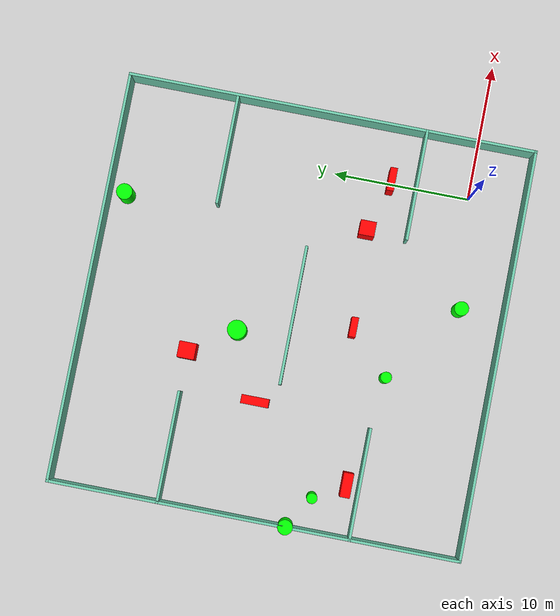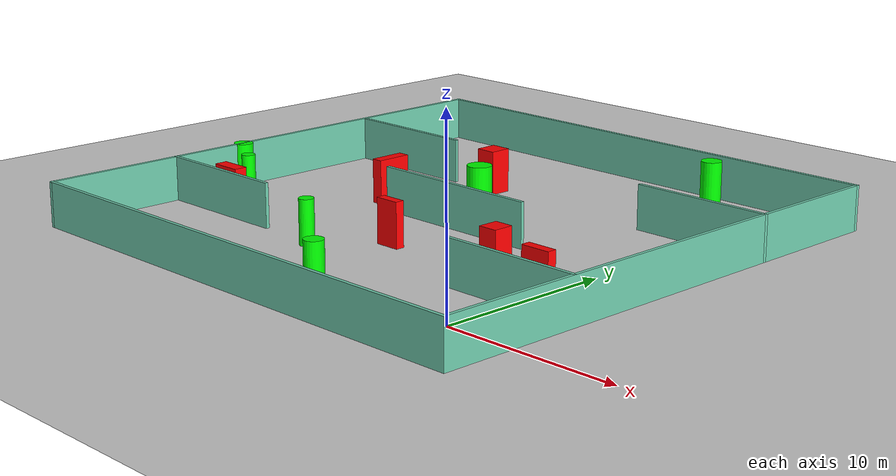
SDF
<sdf version="1.7">
 <world name="default">
  <light name="sun" type="directional">
   <pose>0 0 10 0 -0 0</pose>
   <diffuse>0.8 0.8 0.8 1</diffuse>
   <specular>0.2 0.2 0.2 1</specular>
   <attenuation>
    <range>1000</range>
    <constant>0.9</constant>
    <linear>0.01</linear>
    <quadratic>0.001</quadratic>
   </attenuation>
   <direction>-0.5 0.1 -0.9</direction>
   <spot><inner_angle>0</inner_angle><outer_angle>0</outer_angle><falloff>0</falloff></spot>
  </light>
  <model name="ground_plane">
   <static>1</static>
   <link name="link">
    <collision name="collision">
     <geometry><plane><normal>0 0 1</normal><size>100 100</size></plane></geometry>
     <surface>
      <contact><collide_bitmask>65535</collide_bitmask></contact>
      <friction><ode><mu>100</mu><mu2>50</mu2></ode></friction>
     </surface>
    </collision>
    <visual name="visual">
     <cast_shadows>0</cast_shadows>
     <geometry><plane><normal>0 0 1</normal><size>100 100</size></plane></geometry>
     <material>
      <script><uri>file://media/materials/scripts/gazebo.material</uri><name>Gazebo/Grey</name></script>
     </material>
    </visual>
   </link>
  </model>
  <gravity>0 0 -9.8</gravity>
  <magnetic_field>6e-06 2.3e-05 -4.2e-05</magnetic_field>
  <atmosphere type="adiabatic"/>
  <physics type="ode">
   <max_step_size>0.001</max_step_size>
   <real_time_factor>1</real_time_factor>
   <real_time_update_rate>1000</real_time_update_rate>
  </physics>
  <scene><ambient>0.4 0.4 0.4 1</ambient><background>0.7 0.7 0.7 1</background><shadows>1</shadows></scene>
  <spherical_coordinates>
   <surface_model>EARTH_WGS84</surface_model>
   <latitude_deg>0</latitude_deg>
   <longitude_deg>0</longitude_deg>
   <elevation>0</elevation>
   <heading_deg>0</heading_deg>
  </spherical_coordinates>
  <model name="my_base_walls">
   <link name="Wall_10">
    <collision name="Wall_10_Collision">
     <geometry><box><size>8.2 0.2 2.5</size></box></geometry>
     <pose>0 0 1.25 0 -0 0</pose>
    </collision>
    <visual name="Wall_10_Visual">
     <pose>0 0 1.25 0 -0 0</pose>
     <geometry><box><size>8.2 0.2 2.5</size></box></geometry>
     <material>
      <script><uri>file://media/materials/scripts/gazebo.material</uri><name>Gazebo/Grey</name></script>
      <ambient>0.435294 0.796078 0.67451 1</ambient>
     </material>
     <meta><layer>0</layer></meta>
    </visual>
    <pose>-11 -7 0 0 -0 0</pose>
   </link>
   <link name="Wall_12">
    <collision name="Wall_12_Collision">
     <geometry><box><size>8.2 0.2 2.5</size></box></geometry>
     <pose>0 0 1.25 0 -0 0</pose>
    </collision>
    <visual name="Wall_12_Visual">
     <pose>0 0 1.25 0 -0 0</pose>
     <geometry><box><size>8.2 0.2 2.5</size></box></geometry>
     <material>
      <script><uri>file://media/materials/scripts/gazebo.material</uri><name>Gazebo/Grey</name></script>
      <ambient>0.435294 0.796078 0.67451 1</ambient>
     </material>
     <meta><layer>0</layer></meta>
    </visual>
    <pose>-11 7 0 0 -0 0</pose>
   </link>
   <link name="Wall_14">
    <collision name="Wall_14_Collision">
     <geometry><box><size>8.2 0.2 2.5</size></box></geometry>
     <pose>0 0 1.25 0 -0 0</pose>
    </collision>
    <visual name="Wall_14_Visual">
     <pose>0 0 1.25 0 -0 0</pose>
     <geometry><box><size>8.2 0.2 2.5</size></box></geometry>
     <material>
      <script><uri>file://media/materials/scripts/gazebo.material</uri><name>Gazebo/Grey</name></script>
      <ambient>0.435294 0.796078 0.67451 1</ambient>
     </material>
     <meta><layer>0</layer></meta>
    </visual>
    <pose>11 7 0 0 -0 3.14159</pose>
   </link>
   <link name="Wall_16">
    <collision name="Wall_16_Collision">
     <geometry><box><size>10.2 0.2 2.5</size></box></geometry>
     <pose>0 0 1.25 0 -0 0</pose>
    </collision>
    <visual name="Wall_16_Visual">
     <pose>0 0 1.25 0 -0 0</pose>
     <geometry><box><size>10.2 0.2 2.5</size></box></geometry>
     <material>
      <script><uri>file://media/materials/scripts/gazebo.material</uri><name>Gazebo/Grey</name></script>
      <ambient>0.435294 0.796078 0.67451 1</ambient>
     </material>
     <meta><layer>0</layer></meta>
    </visual>
    <pose>0 0 0 0 -0 3.14159</pose>
   </link>
   <link name="Wall_2">
    <collision name="Wall_2_Collision">
     <geometry><box><size>30.2 0.2 2.5</size></box></geometry>
     <pose>0 0 1.25 0 -0 0</pose>
    </collision>
    <visual name="Wall_2_Visual">
     <pose>0 0 1.25 0 -0 0</pose>
     <geometry><box><size>30.2 0.2 2.5</size></box></geometry>
     <material>
      <script><uri>file://media/materials/scripts/gazebo.material</uri><name>Gazebo/Grey</name></script>
      <ambient>0.435294 0.796078 0.67451 1</ambient>
     </material>
     <meta><layer>0</layer></meta>
    </visual>
    <pose>0 -15 0 0 -0 3.14159</pose>
   </link>
   <link name="Wall_3">
    <collision name="Wall_3_Collision">
     <geometry><box><size>30.2 0.2 2.5</size></box></geometry>
     <pose>0 0 1.25 0 -0 0</pose>
    </collision>
    <visual name="Wall_3_Visual">
     <pose>0 0 1.25 0 -0 0</pose>
     <geometry><box><size>30.2 0.2 2.5</size></box></geometry>
     <material>
      <script><uri>file://media/materials/scripts/gazebo.material</uri><name>Gazebo/Grey</name></script>
      <ambient>0.435294 0.796078 0.67451 1</ambient>
     </material>
     <meta><layer>0</layer></meta>
    </visual>
    <pose>-15 0 0 0 -0 1.5708</pose>
   </link>
   <link name="Wall_4">
    <collision name="Wall_4_Collision">
     <geometry><box><size>30.2 0.2 2.5</size></box></geometry>
     <pose>0 0 1.25 0 -0 0</pose>
    </collision>
    <visual name="Wall_4_Visual">
     <pose>0 0 1.25 0 -0 0</pose>
     <geometry><box><size>30.2 0.2 2.5</size></box></geometry>
     <material>
      <script><uri>file://media/materials/scripts/gazebo.material</uri><name>Gazebo/Grey</name></script>
      <ambient>0.435294 0.796078 0.67451 1</ambient>
     </material>
     <meta><layer>0</layer></meta>
    </visual>
    <pose>0 15 0 0 -0 0</pose>
   </link>
   <link name="Wall_6">
    <collision name="Wall_6_Collision">
     <geometry><box><size>30.2 0.2 2.5</size></box></geometry>
     <pose>0 0 1.25 0 -0 0</pose>
    </collision>
    <visual name="Wall_6_Visual">
     <pose>0 0 1.25 0 -0 0</pose>
     <geometry><box><size>30.2 0.2 2.5</size></box></geometry>
     <material>
      <script><uri>file://media/materials/scripts/gazebo.material</uri><name>Gazebo/Grey</name></script>
      <ambient>0.435294 0.796078 0.67451 1</ambient>
     </material>
     <meta><layer>0</layer></meta>
    </visual>
    <pose>15 0 0 0 -0 1.5708</pose>
   </link>
   <link name="Wall_8">
    <collision name="Wall_8_Collision">
     <geometry><box><size>8.2 0.2 2.5</size></box></geometry>
     <pose>0 0 1.25 0 -0 0</pose>
    </collision>
    <visual name="Wall_8_Visual">
     <pose>0 0 1.25 0 -0 0</pose>
     <geometry><box><size>8.2 0.2 2.5</size></box></geometry>
     <material>
      <script><uri>file://media/materials/scripts/gazebo.material</uri><name>Gazebo/Grey</name></script>
      <ambient>0.435294 0.796078 0.67451 1</ambient>
     </material>
     <meta><layer>0</layer></meta>
    </visual>
    <pose>11 -7 0 0 -0 3.14159</pose>
   </link>
   <static>1</static>
   <pose>-11 11 0 0 -0 0</pose>
  </model>
  <model name="cylinder1">
   <static>1</static>
   <link name="link">
    <inertial>
     <mass>1</mass>
     <inertia><ixx>0.5</ixx><ixy>0</ixy><ixz>0</ixz><iyy>0.5</iyy><iyz>0</iyz><izz>1</izz></inertia>
    </inertial>
    <collision name="collision">
     <geometry><cylinder><radius>0.6983582649757805</radius><length>2.5</length></cylinder></geometry>
    </collision>
    <visual name="visual">
     <geometry><cylinder><radius>0.6983582649757805</radius><length>2.5</length></cylinder></geometry>
     <material>
      <ambient>0 1 0 1</ambient>
      <diffuse>0 1 0 1</diffuse>
      <specular>0.1 0.1 0.1 1</specular>
      <emissive>0 0 0 0</emissive>
     </material>
    </visual>
   </link>
   <pose>-12.8034287346278 14.785355503232374 1.25 0 0 0</pose>
  </model>
  <model name="cylinder2">
   <static>1</static>
   <link name="link">
    <inertial>
     <mass>1</mass>
     <inertia><ixx>0.5</ixx><ixy>0</ixy><ixz>0</ixz><iyy>0.5</iyy><iyz>0</iyz><izz>1</izz></inertia>
    </inertial>
    <collision name="collision">
     <geometry><cylinder><radius>0.5852749581623222</radius><length>2.5</length></cylinder></geometry>
    </collision>
    <visual name="visual">
     <geometry><cylinder><radius>0.5852749581623222</radius><length>2.5</length></cylinder></geometry>
     <material>
      <ambient>0 1 0 1</ambient>
      <diffuse>0 1 0 1</diffuse>
      <specular>0.1 0.1 0.1 1</specular>
      <emissive>0 0 0 0</emissive>
     </material>
    </visual>
   </link>
   <pose>-4.5449333615210055 24.71678953395043 1.25 0 0 0</pose>
  </model>
  <model name="cylinder3">
   <static>1</static>
   <link name="link">
    <inertial>
     <mass>1</mass>
     <inertia><ixx>0.5</ixx><ixy>0</ixy><ixz>0</ixz><iyy>0.5</iyy><iyz>0</iyz><izz>1</izz></inertia>
    </inertial>
    <collision name="collision">
     <geometry><cylinder><radius>0.4118527547190016</radius><length>2.5</length></cylinder></geometry>
    </collision>
    <visual name="visual">
     <geometry><cylinder><radius>0.4118527547190016</radius><length>2.5</length></cylinder></geometry>
     <material>
      <ambient>0 1 0 1</ambient>
      <diffuse>0 1 0 1</diffuse>
      <specular>0.1 0.1 0.1 1</specular>
      <emissive>0 0 0 0</emissive>
     </material>
    </visual>
   </link>
   <pose>-14.13288549215956 3.5986731025103254 1.25 0 0 0</pose>
  </model>
  <model name="cylinder4">
   <static>1</static>
   <link name="link">
    <inertial>
     <mass>1</mass>
     <inertia><ixx>0.5</ixx><ixy>0</ixy><ixz>0</ixz><iyy>0.5</iyy><iyz>0</iyz><izz>1</izz></inertia>
    </inertial>
    <collision name="collision">
     <geometry><cylinder><radius>0.5497131682171565</radius><length>2.5</length></cylinder></geometry>
    </collision>
    <visual name="visual">
     <geometry><cylinder><radius>0.5497131682171565</radius><length>2.5</length></cylinder></geometry>
     <material>
      <ambient>0 1 0 1</ambient>
      <diffuse>0 1 0 1</diffuse>
      <specular>0.1 0.1 0.1 1</specular>
      <emissive>0 0 0 0</emissive>
     </material>
    </visual>
   </link>
   <pose>-25.99246473486835 8.678020436444921 1.25 0 0 0</pose>
  </model>
  <model name="cylinder5">
   <static>1</static>
   <link name="link">
    <inertial>
     <mass>1</mass>
     <inertia><ixx>0.5</ixx><ixy>0</ixy><ixz>0</ixz><iyy>0.5</iyy><iyz>0</iyz><izz>1</izz></inertia>
    </inertial>
    <collision name="collision">
     <geometry><cylinder><radius>0.38738538604623773</radius><length>2.5</length></cylinder></geometry>
    </collision>
    <visual name="visual">
     <geometry><cylinder><radius>0.38738538604623773</radius><length>2.5</length></cylinder></geometry>
     <material>
      <ambient>0 1 0 1</ambient>
      <diffuse>0 1 0 1</diffuse>
      <specular>0.1 0.1 0.1 1</specular>
      <emissive>0 0 0 0</emissive>
     </material>
    </visual>
   </link>
   <pose>-23.6105043572527 7.1827626374374915 1.25 0 0 0</pose>
  </model>
  <model name="cylinder6">
   <static>1</static>
   <link name="link">
    <inertial>
     <mass>1</mass>
     <inertia><ixx>0.5</ixx><ixy>0</ixy><ixz>0</ixz><iyy>0.5</iyy><iyz>0</iyz><izz>1</izz></inertia>
    </inertial>
    <collision name="collision">
     <geometry><cylinder><radius>0.524543625396293</radius><length>2.5</length></cylinder></geometry>
    </collision>
    <visual name="visual">
     <geometry><cylinder><radius>0.524543625396293</radius><length>2.5</length></cylinder></geometry>
     <material>
      <ambient>0 1 0 1</ambient>
      <diffuse>0 1 0 1</diffuse>
      <specular>0.1 0.1 0.1 1</specular>
      <emissive>0 0 0 0</emissive>
     </material>
    </visual>
   </link>
   <pose>-8.224133713336514 -0.8028799952491603 1.25 0 0 0</pose>
  </model>
  <model name="box1">
   <static>1</static>
   <link name="link">
    <inertial>
     <mass>1</mass>
     <inertia><ixx>0.083</ixx><ixy>0</ixy><ixz>0</ixz><iyy>0.083</iyy><iyz>0</iyz><izz>0.083</izz></inertia>
    </inertial>
    <collision name="collision">
     <geometry><box><size>0.6415158248351321 2.0231768774862493 2.5</size></box></geometry>
    </collision>
    <visual name="visual">
     <geometry><box><size>0.6415158248351321 2.0231768774862493 2.5</size></box></geometry>
     <material>
      <ambient>1 0 0 1</ambient>
      <diffuse>1 0 0 1</diffuse>
      <specular>0.1 0.1 0.1 1</specular>
      <emissive>0 0 0 0</emissive>
     </material>
    </visual>
    <sensor name="my_contact" type="contact">
     <contact><collision>box_collision</collision><topic>__default_topic__</topic></contact>
    </sensor>
   </link>
   <pose>-17.594395952475537 12.522213974096426 1.25 0 0 0</pose>
  </model>
  <model name="box2">
   <static>1</static>
   <link name="link">
    <inertial>
     <mass>1</mass>
     <inertia><ixx>0.083</ixx><ixy>0</ixy><ixz>0</ixz><iyy>0.083</iyy><iyz>0</iyz><izz>0.083</izz></inertia>
    </inertial>
    <collision name="collision">
     <geometry><box><size>1.7031438805596562 0.521059259571163 2.5</size></box></geometry>
    </collision>
    <visual name="visual">
     <geometry><box><size>1.7031438805596562 0.521059259571163 2.5</size></box></geometry>
     <material>
      <ambient>1 0 0 1</ambient>
      <diffuse>1 0 0 1</diffuse>
      <specular>0.1 0.1 0.1 1</specular>
      <emissive>0 0 0 0</emissive>
     </material>
    </visual>
    <sensor name="my_contact" type="contact">
     <contact><collision>box_collision</collision><topic>__default_topic__</topic></contact>
    </sensor>
   </link>
   <pose>0.05737191147647991 5.855219107492994 1.25 0 0 0</pose>
  </model>
  <model name="box3">
   <static>1</static>
   <link name="link">
    <inertial>
     <mass>1</mass>
     <inertia><ixx>0.083</ixx><ixy>0</ixy><ixz>0</ixz><iyy>0.083</iyy><iyz>0</iyz><izz>0.083</izz></inertia>
    </inertial>
    <collision name="collision">
     <geometry><box><size>1.0865522241061738 1.1493876841382482 2.5</size></box></geometry>
    </collision>
    <visual name="visual">
     <geometry><box><size>1.0865522241061738 1.1493876841382482 2.5</size></box></geometry>
     <material>
      <ambient>1 0 0 1</ambient>
      <diffuse>1 0 0 1</diffuse>
      <specular>0.1 0.1 0.1 1</specular>
      <emissive>0 0 0 0</emissive>
     </material>
    </visual>
    <sensor name="my_contact" type="contact">
     <contact><collision>box_collision</collision><topic>__default_topic__</topic></contact>
    </sensor>
   </link>
   <pose>-3.7985512037741707 6.9320639346027875 1.25 0 0 0</pose>
  </model>
  <model name="box4">
   <static>1</static>
   <link name="link">
    <inertial>
     <mass>1</mass>
     <inertia><ixx>0.083</ixx><ixy>0</ixy><ixz>0</ixz><iyy>0.083</iyy><iyz>0</iyz><izz>0.083</izz></inertia>
    </inertial>
    <collision name="collision">
     <geometry><box><size>1.4509627740364293 0.5056134013288294 2.5</size></box></geometry>
    </collision>
    <visual name="visual">
     <geometry><box><size>1.4509627740364293 0.5056134013288294 2.5</size></box></geometry>
     <material>
      <ambient>1 0 0 1</ambient>
      <diffuse>1 0 0 1</diffuse>
      <specular>0.1 0.1 0.1 1</specular>
      <emissive>0 0 0 0</emissive>
     </material>
    </visual>
    <sensor name="my_contact" type="contact">
     <contact><collision>box_collision</collision><topic>__default_topic__</topic></contact>
    </sensor>
   </link>
   <pose>-11.007222411598853 6.565681225221063 1.25 0 0 0</pose>
  </model>
  <model name="box5">
   <static>1</static>
   <link name="link">
    <inertial>
     <mass>1</mass>
     <inertia><ixx>0.083</ixx><ixy>0</ixy><ixz>0</ixz><iyy>0.083</iyy><iyz>0</iyz><izz>0.083</izz></inertia>
    </inertial>
    <collision name="collision">
     <geometry><box><size>1.781980807819282 0.7342727312365108 2.5</size></box></geometry>
    </collision>
    <visual name="visual">
     <geometry><box><size>1.781980807819282 0.7342727312365108 2.5</size></box></geometry>
     <material>
      <ambient>1 0 0 1</ambient>
      <diffuse>1 0 0 1</diffuse>
      <specular>0.1 0.1 0.1 1</specular>
      <emissive>0 0 0 0</emissive>
     </material>
    </visual>
    <sensor name="my_contact" type="contact">
     <contact><collision>box_collision</collision><topic>__default_topic__</topic></contact>
    </sensor>
   </link>
   <pose>-22.22365373861421 4.910796876657681 1.25 0 0 0</pose>
  </model>
  <model name="box6">
   <static>1</static>
   <link name="link">
    <inertial>
     <mass>1</mass>
     <inertia><ixx>0.083</ixx><ixy>0</ixy><ixz>0</ixz><iyy>0.083</iyy><iyz>0</iyz><izz>0.083</izz></inertia>
    </inertial>
    <collision name="collision">
     <geometry><box><size>1.1833781699998336 1.2570224576482176 2.5</size></box></geometry>
    </collision>
    <visual name="visual">
     <geometry><box><size>1.1833781699998336 1.2570224576482176 2.5</size></box></geometry>
     <material>
      <ambient>1 0 0 1</ambient>
      <diffuse>1 0 0 1</diffuse>
      <specular>0.1 0.1 0.1 1</specular>
      <emissive>0 0 0 0</emissive>
     </material>
    </visual>
    <sensor name="my_contact" type="contact">
     <contact><collision>box_collision</collision><topic>__default_topic__</topic></contact>
    </sensor>
   </link>
   <pose>-14.949449998351902 18.034395051469254 1.25 0 0 0</pose>
  </model>
 </world>
</sdf>
